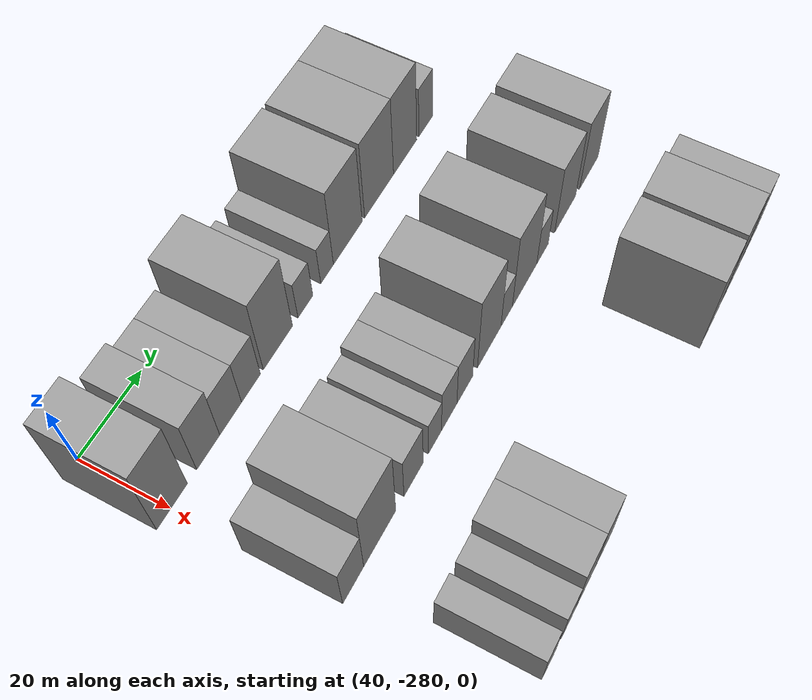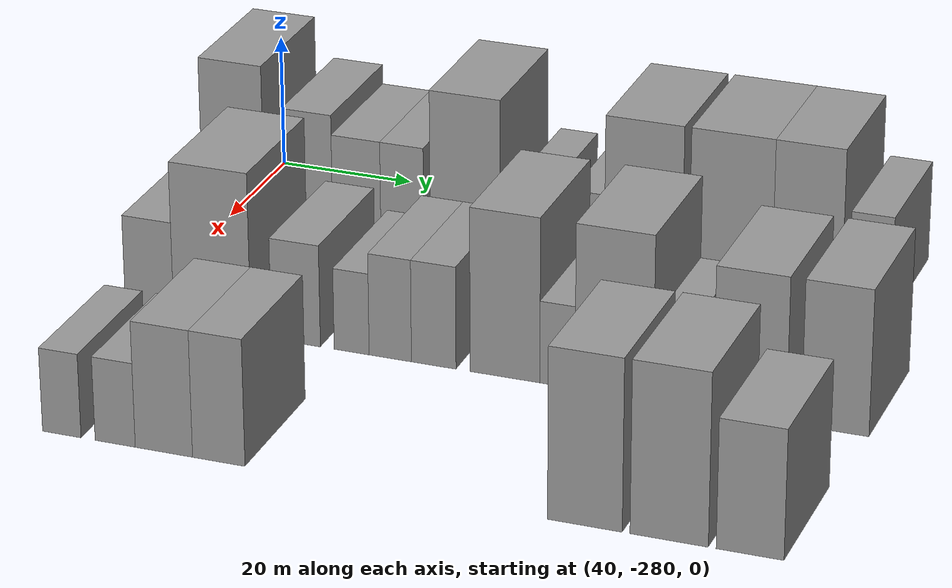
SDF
<sdf version="1.6">
 <world name="default">
  <model name="building_12">
   <static>1</static>
   <pose>50.0000 -279.4902 0 0.000000 0.000000 0.000000</pose>
   <link name="link">
    <pose>0 0 12.00 0 0 0</pose>
    <collision name="collision"><geometry><box><size>20.0000 9.6498 24.0000</size></box></geometry></collision>
    <visual name="visual">
     <cast_shadows>0</cast_shadows>
     <geometry><box><size>20.0000 9.6498 24.0000</size></box></geometry>
     <material>
      <script>
       <uri>model://grey_wall/materials/scripts</uri>
       <uri>model://grey_wall/materials/textures</uri>
       <name>vrc/grey_wall</name>
      </script>
     </material>
    </visual>
   </link>
  </model>
  <model name="building_13">
   <static>1</static>
   <pose>50.0000 -267.8893 0 0.000000 0.000000 0.000000</pose>
   <link name="link">
    <pose>0 0 9.00 0 0 0</pose>
    <collision name="collision"><geometry><box><size>20.0000 7.5519 18.0000</size></box></geometry></collision>
    <visual name="visual">
     <cast_shadows>0</cast_shadows>
     <geometry><box><size>20.0000 7.5519 18.0000</size></box></geometry>
     <material>
      <script>
       <uri>model://grey_wall/materials/scripts</uri>
       <uri>model://grey_wall/materials/textures</uri>
       <name>vrc/grey_wall</name>
      </script>
     </material>
    </visual>
   </link>
  </model>
  <model name="building_14">
   <static>1</static>
   <pose>50.0000 -260.4204 0 0.000000 0.000000 0.000000</pose>
   <link name="link">
    <pose>0 0 7.50 0 0 0</pose>
    <collision name="collision"><geometry><box><size>20.0000 7.3857 15.0000</size></box></geometry></collision>
    <visual name="visual">
     <cast_shadows>0</cast_shadows>
     <geometry><box><size>20.0000 7.3857 15.0000</size></box></geometry>
     <material>
      <script>
       <uri>model://grey_wall/materials/scripts</uri>
       <uri>model://grey_wall/materials/textures</uri>
       <name>vrc/grey_wall</name>
      </script>
     </material>
    </visual>
   </link>
  </model>
  <model name="building_15">
   <static>1</static>
   <pose>50.0000 -253.4633 0 0.000000 0.000000 0.000000</pose>
   <link name="link">
    <pose>0 0 7.50 0 0 0</pose>
    <collision name="collision"><geometry><box><size>20.0000 6.5285 15.0000</size></box></geometry></collision>
    <visual name="visual">
     <cast_shadows>0</cast_shadows>
     <geometry><box><size>20.0000 6.5285 15.0000</size></box></geometry>
     <material>
      <script>
       <uri>model://grey_wall/materials/scripts</uri>
       <uri>model://grey_wall/materials/textures</uri>
       <name>vrc/grey_wall</name>
      </script>
     </material>
    </visual>
   </link>
  </model>
  <model name="building_16">
   <static>1</static>
   <pose>50.0000 -243.9279 0 0.000000 0.000000 0.000000</pose>
   <link name="link">
    <pose>0 0 12.00 0 0 0</pose>
    <collision name="collision"><geometry><box><size>20.0000 10.5424 24.0000</size></box></geometry></collision>
    <visual name="visual">
     <cast_shadows>0</cast_shadows>
     <geometry><box><size>20.0000 10.5424 24.0000</size></box></geometry>
     <material>
      <script>
       <uri>model://grey_wall/materials/scripts</uri>
       <uri>model://grey_wall/materials/textures</uri>
       <name>vrc/grey_wall</name>
      </script>
     </material>
    </visual>
   </link>
  </model>
  <model name="building_17">
   <static>1</static>
   <pose>50.0000 -233.8739 0 0.000000 0.000000 0.000000</pose>
   <link name="link">
    <pose>0 0 6.00 0 0 0</pose>
    <collision name="collision"><geometry><box><size>20.0000 5.5656 12.0000</size></box></geometry></collision>
    <visual name="visual">
     <cast_shadows>0</cast_shadows>
     <geometry><box><size>20.0000 5.5656 12.0000</size></box></geometry>
     <material>
      <script>
       <uri>model://grey_wall/materials/scripts</uri>
       <uri>model://grey_wall/materials/textures</uri>
       <name>vrc/grey_wall</name>
      </script>
     </material>
    </visual>
   </link>
  </model>
  <model name="building_18">
   <static>1</static>
   <pose>50.0000 -225.6553 0 0.000000 0.000000 0.000000</pose>
   <link name="link">
    <pose>0 0 6.00 0 0 0</pose>
    <collision name="collision"><geometry><box><size>20.0000 4.8715 12.0000</size></box></geometry></collision>
    <visual name="visual">
     <cast_shadows>0</cast_shadows>
     <geometry><box><size>20.0000 4.8715 12.0000</size></box></geometry>
     <material>
      <script>
       <uri>model://grey_wall/materials/scripts</uri>
       <uri>model://grey_wall/materials/textures</uri>
       <name>vrc/grey_wall</name>
      </script>
     </material>
    </visual>
   </link>
  </model>
  <model name="building_19">
   <static>1</static>
   <pose>50.0000 -217.5249 0 0.000000 0.000000 0.000000</pose>
   <link name="link">
    <pose>0 0 12.00 0 0 0</pose>
    <collision name="collision"><geometry><box><size>20.0000 11.3892 24.0000</size></box></geometry></collision>
    <visual name="visual">
     <cast_shadows>0</cast_shadows>
     <geometry><box><size>20.0000 11.3892 24.0000</size></box></geometry>
     <material>
      <script>
       <uri>model://grey_wall/materials/scripts</uri>
       <uri>model://grey_wall/materials/textures</uri>
       <name>vrc/grey_wall</name>
      </script>
     </material>
    </visual>
   </link>
  </model>
  <model name="building_20">
   <static>1</static>
   <pose>50.0000 -204.8375 0 0.000000 0.000000 0.000000</pose>
   <link name="link">
    <pose>0 0 12.00 0 0 0</pose>
    <collision name="collision"><geometry><box><size>20.0000 11.9856 24.0000</size></box></geometry></collision>
    <visual name="visual">
     <cast_shadows>0</cast_shadows>
     <geometry><box><size>20.0000 11.9856 24.0000</size></box></geometry>
     <material>
      <script>
       <uri>model://grey_wall/materials/scripts</uri>
       <uri>model://grey_wall/materials/textures</uri>
       <name>vrc/grey_wall</name>
      </script>
     </material>
    </visual>
   </link>
  </model>
  <model name="building_21">
   <static>1</static>
   <pose>50.0000 -193.8713 0 0.000000 0.000000 0.000000</pose>
   <link name="link">
    <pose>0 0 12.00 0 0 0</pose>
    <collision name="collision"><geometry><box><size>20.0000 9.9468 24.0000</size></box></geometry></collision>
    <visual name="visual">
     <cast_shadows>0</cast_shadows>
     <geometry><box><size>20.0000 9.9468 24.0000</size></box></geometry>
     <material>
      <script>
       <uri>model://grey_wall/materials/scripts</uri>
       <uri>model://grey_wall/materials/textures</uri>
       <name>vrc/grey_wall</name>
      </script>
     </material>
    </visual>
   </link>
  </model>
  <model name="building_22">
   <static>1</static>
   <pose>50.0000 -184.8738 0 0.000000 0.000000 0.000000</pose>
   <link name="link">
    <pose>0 0 7.50 0 0 0</pose>
    <collision name="collision"><geometry><box><size>20.0000 6.0483 15.0000</size></box></geometry></collision>
    <visual name="visual">
     <cast_shadows>0</cast_shadows>
     <geometry><box><size>20.0000 6.0483 15.0000</size></box></geometry>
     <material>
      <script>
       <uri>model://grey_wall/materials/scripts</uri>
       <uri>model://grey_wall/materials/textures</uri>
       <name>vrc/grey_wall</name>
      </script>
     </material>
    </visual>
   </link>
  </model>
  <model name="building_97">
   <static>1</static>
   <pose>85.0000 -276.8052 0 0.000000 0.000000 0.000000</pose>
   <link name="link">
    <pose>0 0 7.50 0 0 0</pose>
    <collision name="collision"><geometry><box><size>20.0000 7.2042 15.0000</size></box></geometry></collision>
    <visual name="visual">
     <cast_shadows>0</cast_shadows>
     <geometry><box><size>20.0000 7.2042 15.0000</size></box></geometry>
     <material>
      <script>
       <uri>model://grey_wall/materials/scripts</uri>
       <uri>model://grey_wall/materials/textures</uri>
       <name>vrc/grey_wall</name>
      </script>
     </material>
    </visual>
   </link>
  </model>
  <model name="building_98">
   <static>1</static>
   <pose>85.0000 -267.5084 0 0.000000 0.000000 0.000000</pose>
   <link name="link">
    <pose>0 0 12.00 0 0 0</pose>
    <collision name="collision"><geometry><box><size>20.0000 11.3893 24.0000</size></box></geometry></collision>
    <visual name="visual">
     <cast_shadows>0</cast_shadows>
     <geometry><box><size>20.0000 11.3893 24.0000</size></box></geometry>
     <material>
      <script>
       <uri>model://grey_wall/materials/scripts</uri>
       <uri>model://grey_wall/materials/textures</uri>
       <name>vrc/grey_wall</name>
      </script>
     </material>
    </visual>
   </link>
  </model>
  <model name="building_99">
   <static>1</static>
   <pose>85.0000 -255.2393 0 0.000000 0.000000 0.000000</pose>
   <link name="link">
    <pose>0 0 7.50 0 0 0</pose>
    <collision name="collision"><geometry><box><size>20.0000 7.1490 15.0000</size></box></geometry></collision>
    <visual name="visual">
     <cast_shadows>0</cast_shadows>
     <geometry><box><size>20.0000 7.1490 15.0000</size></box></geometry>
     <material>
      <script>
       <uri>model://grey_wall/materials/scripts</uri>
       <uri>model://grey_wall/materials/textures</uri>
       <name>vrc/grey_wall</name>
      </script>
     </material>
    </visual>
   </link>
  </model>
  <model name="building_100">
   <static>1</static>
   <pose>85.0000 -247.1373 0 0.000000 0.000000 0.000000</pose>
   <link name="link">
    <pose>0 0 6.00 0 0 0</pose>
    <collision name="collision"><geometry><box><size>20.0000 5.0549 12.0000</size></box></geometry></collision>
    <visual name="visual">
     <cast_shadows>0</cast_shadows>
     <geometry><box><size>20.0000 5.0549 12.0000</size></box></geometry>
     <material>
      <script>
       <uri>model://grey_wall/materials/scripts</uri>
       <uri>model://grey_wall/materials/textures</uri>
       <name>vrc/grey_wall</name>
      </script>
     </material>
    </visual>
   </link>
  </model>
  <model name="building_101">
   <static>1</static>
   <pose>85.0000 -241.5683 0 0.000000 0.000000 0.000000</pose>
   <link name="link">
    <pose>0 0 7.50 0 0 0</pose>
    <collision name="collision"><geometry><box><size>20.0000 6.0831 15.0000</size></box></geometry></collision>
    <visual name="visual">
     <cast_shadows>0</cast_shadows>
     <geometry><box><size>20.0000 6.0831 15.0000</size></box></geometry>
     <material>
      <script>
       <uri>model://grey_wall/materials/scripts</uri>
       <uri>model://grey_wall/materials/textures</uri>
       <name>vrc/grey_wall</name>
      </script>
     </material>
    </visual>
   </link>
  </model>
  <model name="building_102">
   <static>1</static>
   <pose>85.0000 -235.3431 0 0.000000 0.000000 0.000000</pose>
   <link name="link">
    <pose>0 0 7.50 0 0 0</pose>
    <collision name="collision"><geometry><box><size>20.0000 6.3673 15.0000</size></box></geometry></collision>
    <visual name="visual">
     <cast_shadows>0</cast_shadows>
     <geometry><box><size>20.0000 6.3673 15.0000</size></box></geometry>
     <material>
      <script>
       <uri>model://grey_wall/materials/scripts</uri>
       <uri>model://grey_wall/materials/textures</uri>
       <name>vrc/grey_wall</name>
      </script>
     </material>
    </visual>
   </link>
  </model>
  <model name="building_103">
   <static>1</static>
   <pose>85.0000 -225.2364 0 0.000000 0.000000 0.000000</pose>
   <link name="link">
    <pose>0 0 12.00 0 0 0</pose>
    <collision name="collision"><geometry><box><size>20.0000 9.8462 24.0000</size></box></geometry></collision>
    <visual name="visual">
     <cast_shadows>0</cast_shadows>
     <geometry><box><size>20.0000 9.8462 24.0000</size></box></geometry>
     <material>
      <script>
       <uri>model://grey_wall/materials/scripts</uri>
       <uri>model://grey_wall/materials/textures</uri>
       <name>vrc/grey_wall</name>
      </script>
     </material>
    </visual>
   </link>
  </model>
  <model name="building_104">
   <static>1</static>
   <pose>85.0000 -217.8574 0 0.000000 0.000000 0.000000</pose>
   <link name="link">
    <pose>0 0 6.00 0 0 0</pose>
    <collision name="collision"><geometry><box><size>20.0000 4.9117 12.0000</size></box></geometry></collision>
    <visual name="visual">
     <cast_shadows>0</cast_shadows>
     <geometry><box><size>20.0000 4.9117 12.0000</size></box></geometry>
     <material>
      <script>
       <uri>model://grey_wall/materials/scripts</uri>
       <uri>model://grey_wall/materials/textures</uri>
       <name>vrc/grey_wall</name>
      </script>
     </material>
    </visual>
   </link>
  </model>
  <model name="building_105">
   <static>1</static>
   <pose>85.0000 -209.9858 0 0.000000 0.000000 0.000000</pose>
   <link name="link">
    <pose>0 0 12.00 0 0 0</pose>
    <collision name="collision"><geometry><box><size>20.0000 10.8316 24.0000</size></box></geometry></collision>
    <visual name="visual">
     <cast_shadows>0</cast_shadows>
     <geometry><box><size>20.0000 10.8316 24.0000</size></box></geometry>
     <material>
      <script>
       <uri>model://grey_wall/materials/scripts</uri>
       <uri>model://grey_wall/materials/textures</uri>
       <name>vrc/grey_wall</name>
      </script>
     </material>
    </visual>
   </link>
  </model>
  <model name="building_106">
   <static>1</static>
   <pose>85.0000 -201.9390 0 0.000000 0.000000 0.000000</pose>
   <link name="link">
    <pose>0 0 6.00 0 0 0</pose>
    <collision name="collision"><geometry><box><size>20.0000 5.2619 12.0000</size></box></geometry></collision>
    <visual name="visual">
     <cast_shadows>0</cast_shadows>
     <geometry><box><size>20.0000 5.2619 12.0000</size></box></geometry>
     <material>
      <script>
       <uri>model://grey_wall/materials/scripts</uri>
       <uri>model://grey_wall/materials/textures</uri>
       <name>vrc/grey_wall</name>
      </script>
     </material>
    </visual>
   </link>
  </model>
  <model name="building_107">
   <static>1</static>
   <pose>85.0000 -191.3452 0 0.000000 0.000000 0.000000</pose>
   <link name="link">
    <pose>0 0 10.50 0 0 0</pose>
    <collision name="collision"><geometry><box><size>20.0000 9.9256 21.0000</size></box></geometry></collision>
    <visual name="visual">
     <cast_shadows>0</cast_shadows>
     <geometry><box><size>20.0000 9.9256 21.0000</size></box></geometry>
     <material>
      <script>
       <uri>model://grey_wall/materials/scripts</uri>
       <uri>model://grey_wall/materials/textures</uri>
       <name>vrc/grey_wall</name>
      </script>
     </material>
    </visual>
   </link>
  </model>
  <model name="building_108">
   <static>1</static>
   <pose>85.0000 -179.8351 0 0.000000 0.000000 0.000000</pose>
   <link name="link">
    <pose>0 0 10.50 0 0 0</pose>
    <collision name="collision"><geometry><box><size>20.0000 9.0946 21.0000</size></box></geometry></collision>
    <visual name="visual">
     <cast_shadows>0</cast_shadows>
     <geometry><box><size>20.0000 9.0946 21.0000</size></box></geometry>
     <material>
      <script>
       <uri>model://grey_wall/materials/scripts</uri>
       <uri>model://grey_wall/materials/textures</uri>
       <name>vrc/grey_wall</name>
      </script>
     </material>
    </visual>
   </link>
  </model>
  <model name="building_169">
   <static>1</static>
   <pose>120.0000 -273.3553 0 0.000000 0.000000 0.000000</pose>
   <link name="link">
    <pose>0 0 6.00 0 0 0</pose>
    <collision name="collision"><geometry><box><size>20.0000 5.4654 12.0000</size></box></geometry></collision>
    <visual name="visual">
     <cast_shadows>0</cast_shadows>
     <geometry><box><size>20.0000 5.4654 12.0000</size></box></geometry>
     <material>
      <script>
       <uri>model://grey_wall/materials/scripts</uri>
       <uri>model://grey_wall/materials/textures</uri>
       <name>vrc/grey_wall</name>
      </script>
     </material>
    </visual>
   </link>
  </model>
  <model name="building_170">
   <static>1</static>
   <pose>120.0000 -265.7924 0 0.000000 0.000000 0.000000</pose>
   <link name="link">
    <pose>0 0 6.00 0 0 0</pose>
    <collision name="collision"><geometry><box><size>20.0000 5.6602 12.0000</size></box></geometry></collision>
    <visual name="visual">
     <cast_shadows>0</cast_shadows>
     <geometry><box><size>20.0000 5.6602 12.0000</size></box></geometry>
     <material>
      <script>
       <uri>model://grey_wall/materials/scripts</uri>
       <uri>model://grey_wall/materials/textures</uri>
       <name>vrc/grey_wall</name>
      </script>
     </material>
    </visual>
   </link>
  </model>
  <model name="building_171">
   <static>1</static>
   <pose>120.0000 -258.9532 0 0.000000 0.000000 0.000000</pose>
   <link name="link">
    <pose>0 0 9.00 0 0 0</pose>
    <collision name="collision"><geometry><box><size>20.0000 8.0184 18.0000</size></box></geometry></collision>
    <visual name="visual">
     <cast_shadows>0</cast_shadows>
     <geometry><box><size>20.0000 8.0184 18.0000</size></box></geometry>
     <material>
      <script>
       <uri>model://grey_wall/materials/scripts</uri>
       <uri>model://grey_wall/materials/textures</uri>
       <name>vrc/grey_wall</name>
      </script>
     </material>
    </visual>
   </link>
  </model>
  <model name="building_172">
   <static>1</static>
   <pose>120.0000 -251.3056 0 0.000000 0.000000 0.000000</pose>
   <link name="link">
    <pose>0 0 9.00 0 0 0</pose>
    <collision name="collision"><geometry><box><size>20.0000 7.2768 18.0000</size></box></geometry></collision>
    <visual name="visual">
     <cast_shadows>0</cast_shadows>
     <geometry><box><size>20.0000 7.2768 18.0000</size></box></geometry>
     <material>
      <script>
       <uri>model://grey_wall/materials/scripts</uri>
       <uri>model://grey_wall/materials/textures</uri>
       <name>vrc/grey_wall</name>
      </script>
     </material>
    </visual>
   </link>
  </model>
  <model name="building_173">
   <static>1</static>
   <pose>120.0000 -201.9907 0 0.000000 0.000000 0.000000</pose>
   <link name="link">
    <pose>0 0 12.00 0 0 0</pose>
    <collision name="collision"><geometry><box><size>20.0000 9.7844 24.0000</size></box></geometry></collision>
    <visual name="visual">
     <cast_shadows>0</cast_shadows>
     <geometry><box><size>20.0000 9.7844 24.0000</size></box></geometry>
     <material>
      <script>
       <uri>model://grey_wall/materials/scripts</uri>
       <uri>model://grey_wall/materials/textures</uri>
       <name>vrc/grey_wall</name>
      </script>
     </material>
    </visual>
   </link>
  </model>
  <model name="building_174">
   <static>1</static>
   <pose>120.0000 -191.0383 0 0.000000 0.000000 0.000000</pose>
   <link name="link">
    <pose>0 0 12.00 0 0 0</pose>
    <collision name="collision"><geometry><box><size>20.0000 10.1203 24.0000</size></box></geometry></collision>
    <visual name="visual">
     <cast_shadows>0</cast_shadows>
     <geometry><box><size>20.0000 10.1203 24.0000</size></box></geometry>
     <material>
      <script>
       <uri>model://grey_wall/materials/scripts</uri>
       <uri>model://grey_wall/materials/textures</uri>
       <name>vrc/grey_wall</name>
      </script>
     </material>
    </visual>
   </link>
  </model>
  <model name="building_175">
   <static>1</static>
   <pose>120.0000 -180.6505 0 0.000000 0.000000 0.000000</pose>
   <link name="link">
    <pose>0 0 9.00 0 0 0</pose>
    <collision name="collision"><geometry><box><size>20.0000 8.6553 18.0000</size></box></geometry></collision>
    <visual name="visual">
     <cast_shadows>0</cast_shadows>
     <geometry><box><size>20.0000 8.6553 18.0000</size></box></geometry>
     <material>
      <script>
       <uri>model://grey_wall/materials/scripts</uri>
       <uri>model://grey_wall/materials/textures</uri>
       <name>vrc/grey_wall</name>
      </script>
     </material>
    </visual>
   </link>
  </model>
 </world>
</sdf>
